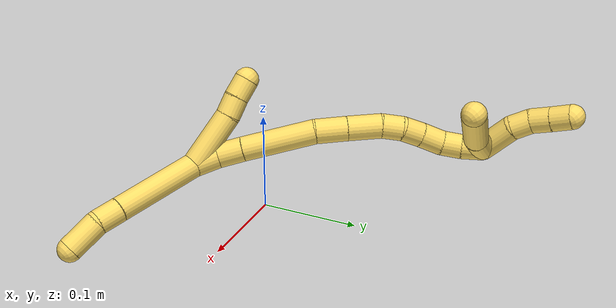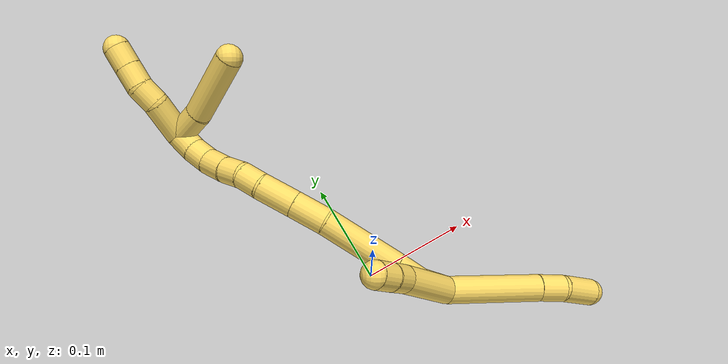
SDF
<sdf version="1.7">
 <world name="default">
  <model name="5">
   <static>0</static>
   <link name="5">
    <collision name="collision-cylinder-e_1_2_8">
     <pose>0.004018 -0.004779 -0.044405 3.03439 0.089728 1.39349</pose>
     <geometry><cylinder><radius>0.0125</radius><length>0.089684</length></cylinder></geometry>
     <surface>
      <friction><ode><mu>1.16</mu><mu2>1.16</mu2><slip1>0</slip1><slip2>0</slip2></ode></friction>
      <contact><ode><kp>1e+06</kp><kd>1</kd><max_vel>0</max_vel><min_depth>0.001</min_depth></ode></contact>
     </surface>
    </collision>
    <visual name="visual-cylinder-e_1_2_8">
     <pose>0.004018 -0.004779 -0.044405 3.03439 0.089728 1.39349</pose>
     <geometry><cylinder><radius>0.0125</radius><length>0.089684</length></cylinder></geometry>
     <material><ambient>1 0.858824 0.4 1</ambient></material>
    </visual>
    <collision name="collision-cylinder-e_2_8_9">
     <pose>0.008749 -0.011257 -0.101017 3.00326 0.057745 0.789988</pose>
     <geometry><cylinder><radius>0.0125</radius><length>0.024689</length></cylinder></geometry>
     <surface>
      <friction><ode><mu>1.16</mu><mu2>1.16</mu2><slip1>0</slip1><slip2>0</slip2></ode></friction>
      <contact><ode><kp>1e+06</kp><kd>1</kd><max_vel>0</max_vel><min_depth>0.001</min_depth></ode></contact>
     </surface>
    </collision>
    <visual name="visual-cylinder-e_2_8_9">
     <pose>0.008749 -0.011257 -0.101017 3.00326 0.057745 0.789988</pose>
     <geometry><cylinder><radius>0.0125</radius><length>0.024689</length></cylinder></geometry>
     <material><ambient>1 0.858824 0.4 1</ambient></material>
    </visual>
    <collision name="collision-cylinder-e_3_9_6">
     <pose>0.005013 -0.014565 -0.130397 3.0482 -0.252367 -2.43574</pose>
     <geometry><cylinder><radius>0.0125</radius><length>0.035627</length></cylinder></geometry>
     <surface>
      <friction><ode><mu>1.16</mu><mu2>1.16</mu2><slip1>0</slip1><slip2>0</slip2></ode></friction>
      <contact><ode><kp>1e+06</kp><kd>1</kd><max_vel>0</max_vel><min_depth>0.001</min_depth></ode></contact>
     </surface>
    </collision>
    <visual name="visual-cylinder-e_3_9_6">
     <pose>0.005013 -0.014565 -0.130397 3.0482 -0.252367 -2.43574</pose>
     <geometry><cylinder><radius>0.0125</radius><length>0.035627</length></cylinder></geometry>
     <material><ambient>1 0.858824 0.4 1</ambient></material>
    </visual>
    <collision name="collision-cylinder-e_1_2_10">
     <pose>0.014366 0.001454 0.02599 -0.055884 0.504296 -0.014401</pose>
     <geometry><cylinder><radius>0.0125</radius><length>0.059464</length></cylinder></geometry>
     <surface>
      <friction><ode><mu>1.16</mu><mu2>1.16</mu2><slip1>0</slip1><slip2>0</slip2></ode></friction>
      <contact><ode><kp>1e+06</kp><kd>1</kd><max_vel>0</max_vel><min_depth>0.001</min_depth></ode></contact>
     </surface>
    </collision>
    <visual name="visual-cylinder-e_1_2_10">
     <pose>0.014366 0.001454 0.02599 -0.055884 0.504296 -0.014401</pose>
     <geometry><cylinder><radius>0.0125</radius><length>0.059464</length></cylinder></geometry>
     <material><ambient>1 0.858824 0.4 1</ambient></material>
    </visual>
    <collision name="collision-cylinder-e_2_10_11">
     <pose>0.034444 0.001903 0.060215 0.121503 0.603009 0.037828</pose>
     <geometry><cylinder><radius>0.0125</radius><length>0.020143</length></cylinder></geometry>
     <surface>
      <friction><ode><mu>1.16</mu><mu2>1.16</mu2><slip1>0</slip1><slip2>0</slip2></ode></friction>
      <contact><ode><kp>1e+06</kp><kd>1</kd><max_vel>0</max_vel><min_depth>0.001</min_depth></ode></contact>
     </surface>
    </collision>
    <visual name="visual-cylinder-e_2_10_11">
     <pose>0.034444 0.001903 0.060215 0.121503 0.603009 0.037828</pose>
     <geometry><cylinder><radius>0.0125</radius><length>0.020143</length></cylinder></geometry>
     <material><ambient>1 0.858824 0.4 1</ambient></material>
    </visual>
    <collision name="collision-cylinder-e_3_11_5">
     <pose>0.045242 0.000489 0.077277 0.046247 0.522214 0.01236</pose>
     <geometry><cylinder><radius>0.0125</radius><length>0.020393</length></cylinder></geometry>
     <surface>
      <friction><ode><mu>1.16</mu><mu2>1.16</mu2><slip1>0</slip1><slip2>0</slip2></ode></friction>
      <contact><ode><kp>1e+06</kp><kd>1</kd><max_vel>0</max_vel><min_depth>0.001</min_depth></ode></contact>
     </surface>
    </collision>
    <visual name="visual-cylinder-e_3_11_5">
     <pose>0.045242 0.000489 0.077277 0.046247 0.522214 0.01236</pose>
     <geometry><cylinder><radius>0.0125</radius><length>0.020393</length></cylinder></geometry>
     <material><ambient>1 0.858824 0.4 1</ambient></material>
    </visual>
    <collision name="collision-cylinder-e_1_2_12">
     <pose>-0.000112 0.005137 0.011595 -0.417039 -0.008865 0.001876</pose>
     <geometry><cylinder><radius>0.0125</radius><length>0.025364</length></cylinder></geometry>
     <surface>
      <friction><ode><mu>1.16</mu><mu2>1.16</mu2><slip1>0</slip1><slip2>0</slip2></ode></friction>
      <contact><ode><kp>1e+06</kp><kd>1</kd><max_vel>0</max_vel><min_depth>0.001</min_depth></ode></contact>
     </surface>
    </collision>
    <visual name="visual-cylinder-e_1_2_12">
     <pose>-0.000112 0.005137 0.011595 -0.417039 -0.008865 0.001876</pose>
     <geometry><cylinder><radius>0.0125</radius><length>0.025364</length></cylinder></geometry>
     <material><ambient>1 0.858824 0.4 1</ambient></material>
    </visual>
    <collision name="collision-cylinder-e_2_12_13">
     <pose>0.00111 0.018461 0.0335 -0.67109 0.101002 -0.035249</pose>
     <geometry><cylinder><radius>0.0125</radius><length>0.026467</length></cylinder></geometry>
     <surface>
      <friction><ode><mu>1.16</mu><mu2>1.16</mu2><slip1>0</slip1><slip2>0</slip2></ode></friction>
      <contact><ode><kp>1e+06</kp><kd>1</kd><max_vel>0</max_vel><min_depth>0.001</min_depth></ode></contact>
     </surface>
    </collision>
    <visual name="visual-cylinder-e_2_12_13">
     <pose>0.00111 0.018461 0.0335 -0.67109 0.101002 -0.035249</pose>
     <geometry><cylinder><radius>0.0125</radius><length>0.026467</length></cylinder></geometry>
     <material><ambient>1 0.858824 0.4 1</ambient></material>
    </visual>
    <collision name="collision-cylinder-e_3_13_14">
     <pose>0.004817 0.049507 0.072923 -0.665675 0.064022 -0.022139</pose>
     <geometry><cylinder><radius>0.0125</radius><length>0.074179</length></cylinder></geometry>
     <surface>
      <friction><ode><mu>1.16</mu><mu2>1.16</mu2><slip1>0</slip1><slip2>0</slip2></ode></friction>
      <contact><ode><kp>1e+06</kp><kd>1</kd><max_vel>0</max_vel><min_depth>0.001</min_depth></ode></contact>
     </surface>
    </collision>
    <visual name="visual-cylinder-e_3_13_14">
     <pose>0.004817 0.049507 0.072923 -0.665675 0.064022 -0.022139</pose>
     <geometry><cylinder><radius>0.0125</radius><length>0.074179</length></cylinder></geometry>
     <material><ambient>1 0.858824 0.4 1</ambient></material>
    </visual>
    <collision name="collision-cylinder-e_4_14_15">
     <pose>0.005531 0.082684 0.114176 -0.704343 -0.103735 0.038151</pose>
     <geometry><cylinder><radius>0.0125</radius><length>0.032039</length></cylinder></geometry>
     <surface>
      <friction><ode><mu>1.16</mu><mu2>1.16</mu2><slip1>0</slip1><slip2>0</slip2></ode></friction>
      <contact><ode><kp>1e+06</kp><kd>1</kd><max_vel>0</max_vel><min_depth>0.001</min_depth></ode></contact>
     </surface>
    </collision>
    <visual name="visual-cylinder-e_4_14_15">
     <pose>0.005531 0.082684 0.114176 -0.704343 -0.103735 0.038151</pose>
     <geometry><cylinder><radius>0.0125</radius><length>0.032039</length></cylinder></geometry>
     <material><ambient>1 0.858824 0.4 1</ambient></material>
    </visual>
    <collision name="collision-cylinder-e_5_15_16">
     <pose>0.001751 0.104216 0.139415 -0.708096 -0.122381 0.045283</pose>
     <geometry><cylinder><radius>0.0125</radius><length>0.034746</length></cylinder></geometry>
     <surface>
      <friction><ode><mu>1.16</mu><mu2>1.16</mu2><slip1>0</slip1><slip2>0</slip2></ode></friction>
      <contact><ode><kp>1e+06</kp><kd>1</kd><max_vel>0</max_vel><min_depth>0.001</min_depth></ode></contact>
     </surface>
    </collision>
    <visual name="visual-cylinder-e_5_15_16">
     <pose>0.001751 0.104216 0.139415 -0.708096 -0.122381 0.045283</pose>
     <geometry><cylinder><radius>0.0125</radius><length>0.034746</length></cylinder></geometry>
     <material><ambient>1 0.858824 0.4 1</ambient></material>
    </visual>
    <collision name="collision-cylinder-e_6_16_17">
     <pose>-0.003272 0.123137 0.159272 -0.850811 -0.275923 0.125647</pose>
     <geometry><cylinder><radius>0.0125</radius><length>0.021305</length></cylinder></geometry>
     <surface>
      <friction><ode><mu>1.16</mu><mu2>1.16</mu2><slip1>0</slip1><slip2>0</slip2></ode></friction>
      <contact><ode><kp>1e+06</kp><kd>1</kd><max_vel>0</max_vel><min_depth>0.001</min_depth></ode></contact>
     </surface>
    </collision>
    <visual name="visual-cylinder-e_6_16_17">
     <pose>-0.003272 0.123137 0.159272 -0.850811 -0.275923 0.125647</pose>
     <geometry><cylinder><radius>0.0125</radius><length>0.021305</length></cylinder></geometry>
     <material><ambient>1 0.858824 0.4 1</ambient></material>
    </visual>
    <collision name="collision-cylinder-e_7_17_18">
     <pose>-0.011574 0.137306 0.171961 -0.828331 -0.551792 0.247638</pose>
     <geometry><cylinder><radius>0.0125</radius><length>0.020602</length></cylinder></geometry>
     <surface>
      <friction><ode><mu>1.16</mu><mu2>1.16</mu2><slip1>0</slip1><slip2>0</slip2></ode></friction>
      <contact><ode><kp>1e+06</kp><kd>1</kd><max_vel>0</max_vel><min_depth>0.001</min_depth></ode></contact>
     </surface>
    </collision>
    <visual name="visual-cylinder-e_7_17_18">
     <pose>-0.011574 0.137306 0.171961 -0.828331 -0.551792 0.247638</pose>
     <geometry><cylinder><radius>0.0125</radius><length>0.020602</length></cylinder></geometry>
     <material><ambient>1 0.858824 0.4 1</ambient></material>
    </visual>
    <collision name="collision-cylinder-e_8_18_19">
     <pose>-0.022768 0.152168 0.183804 -0.957409 -0.513648 0.270916</pose>
     <geometry><cylinder><radius>0.0125</radius><length>0.023586</length></cylinder></geometry>
     <surface>
      <friction><ode><mu>1.16</mu><mu2>1.16</mu2><slip1>0</slip1><slip2>0</slip2></ode></friction>
      <contact><ode><kp>1e+06</kp><kd>1</kd><max_vel>0</max_vel><min_depth>0.001</min_depth></ode></contact>
     </surface>
    </collision>
    <visual name="visual-cylinder-e_8_18_19">
     <pose>-0.022768 0.152168 0.183804 -0.957409 -0.513648 0.270916</pose>
     <geometry><cylinder><radius>0.0125</radius><length>0.023586</length></cylinder></geometry>
     <material><ambient>1 0.858824 0.4 1</ambient></material>
    </visual>
    <collision name="collision-cylinder-e_9_19_20">
     <pose>-0.031017 0.168659 0.195416 -0.95721 -0.24305 0.126559</pose>
     <geometry><cylinder><radius>0.0125</radius><length>0.020393</length></cylinder></geometry>
     <surface>
      <friction><ode><mu>1.16</mu><mu2>1.16</mu2><slip1>0</slip1><slip2>0</slip2></ode></friction>
      <contact><ode><kp>1e+06</kp><kd>1</kd><max_vel>0</max_vel><min_depth>0.001</min_depth></ode></contact>
     </surface>
    </collision>
    <visual name="visual-cylinder-e_9_19_20">
     <pose>-0.031017 0.168659 0.195416 -0.95721 -0.24305 0.126559</pose>
     <geometry><cylinder><radius>0.0125</radius><length>0.020393</length></cylinder></geometry>
     <material><ambient>1 0.858824 0.4 1</ambient></material>
    </visual>
    <collision name="collision-cylinder-e_10_20_1">
     <pose>-0.03381 0.185617 0.20702 -0.983229 -0.031826 0.017043</pose>
     <geometry><cylinder><radius>0.0125</radius><length>0.021318</length></cylinder></geometry>
     <surface>
      <friction><ode><mu>1.16</mu><mu2>1.16</mu2><slip1>0</slip1><slip2>0</slip2></ode></friction>
      <contact><ode><kp>1e+06</kp><kd>1</kd><max_vel>0</max_vel><min_depth>0.001</min_depth></ode></contact>
     </surface>
    </collision>
    <visual name="visual-cylinder-e_10_20_1">
     <pose>-0.03381 0.185617 0.20702 -0.983229 -0.031826 0.017043</pose>
     <geometry><cylinder><radius>0.0125</radius><length>0.021318</length></cylinder></geometry>
     <material><ambient>1 0.858824 0.4 1</ambient></material>
    </visual>
    <collision name="collision-cylinder-e_1_1_21">
     <pose>-0.022472 0.204614 0.223905 -0.745215 0.663459 -0.267665</pose>
     <geometry><cylinder><radius>0.0125</radius><length>0.037922</length></cylinder></geometry>
     <surface>
      <friction><ode><mu>1.16</mu><mu2>1.16</mu2><slip1>0</slip1><slip2>0</slip2></ode></friction>
      <contact><ode><kp>1e+06</kp><kd>1</kd><max_vel>0</max_vel><min_depth>0.001</min_depth></ode></contact>
     </surface>
    </collision>
    <visual name="visual-cylinder-e_1_1_21">
     <pose>-0.022472 0.204614 0.223905 -0.745215 0.663459 -0.267665</pose>
     <geometry><cylinder><radius>0.0125</radius><length>0.037922</length></cylinder></geometry>
     <material><ambient>1 0.858824 0.4 1</ambient></material>
    </visual>
    <collision name="collision-cylinder-e_2_21_22">
     <pose>-0.007479 0.221541 0.241668 -0.786299 0.332486 -0.138956</pose>
     <geometry><cylinder><radius>0.0125</radius><length>0.020318</length></cylinder></geometry>
     <surface>
      <friction><ode><mu>1.16</mu><mu2>1.16</mu2><slip1>0</slip1><slip2>0</slip2></ode></friction>
      <contact><ode><kp>1e+06</kp><kd>1</kd><max_vel>0</max_vel><min_depth>0.001</min_depth></ode></contact>
     </surface>
    </collision>
    <visual name="visual-cylinder-e_2_21_22">
     <pose>-0.007479 0.221541 0.241668 -0.786299 0.332486 -0.138956</pose>
     <geometry><cylinder><radius>0.0125</radius><length>0.020318</length></cylinder></geometry>
     <material><ambient>1 0.858824 0.4 1</ambient></material>
    </visual>
    <collision name="collision-cylinder-e_3_22_23">
     <pose>-0.001288 0.237341 0.253203 -1.08527 0.275275 -0.166665</pose>
     <geometry><cylinder><radius>0.0125</radius><length>0.021158</length></cylinder></geometry>
     <surface>
      <friction><ode><mu>1.16</mu><mu2>1.16</mu2><slip1>0</slip1><slip2>0</slip2></ode></friction>
      <contact><ode><kp>1e+06</kp><kd>1</kd><max_vel>0</max_vel><min_depth>0.001</min_depth></ode></contact>
     </surface>
    </collision>
    <visual name="visual-cylinder-e_3_22_23">
     <pose>-0.001288 0.237341 0.253203 -1.08527 0.275275 -0.166665</pose>
     <geometry><cylinder><radius>0.0125</radius><length>0.021158</length></cylinder></geometry>
     <material><ambient>1 0.858824 0.4 1</ambient></material>
    </visual>
    <collision name="collision-cylinder-e_4_23_4">
     <pose>0.004606 0.255038 0.262584 -1.08139 0.297321 -0.179348</pose>
     <geometry><cylinder><radius>0.0125</radius><length>0.020601</length></cylinder></geometry>
     <surface>
      <friction><ode><mu>1.16</mu><mu2>1.16</mu2><slip1>0</slip1><slip2>0</slip2></ode></friction>
      <contact><ode><kp>1e+06</kp><kd>1</kd><max_vel>0</max_vel><min_depth>0.001</min_depth></ode></contact>
     </surface>
    </collision>
    <visual name="visual-cylinder-e_4_23_4">
     <pose>0.004606 0.255038 0.262584 -1.08139 0.297321 -0.179348</pose>
     <geometry><cylinder><radius>0.0125</radius><length>0.020601</length></cylinder></geometry>
     <material><ambient>1 0.858824 0.4 1</ambient></material>
    </visual>
    <collision name="collision-cylinder-e_1_1_24">
     <pose>-0.019721 0.196735 0.205467 -2.8484 1.07567 -2.65627</pose>
     <geometry><cylinder><radius>0.0125</radius><length>0.032794</length></cylinder></geometry>
     <surface>
      <friction><ode><mu>1.16</mu><mu2>1.16</mu2><slip1>0</slip1><slip2>0</slip2></ode></friction>
      <contact><ode><kp>1e+06</kp><kd>1</kd><max_vel>0</max_vel><min_depth>0.001</min_depth></ode></contact>
     </surface>
    </collision>
    <visual name="visual-cylinder-e_1_1_24">
     <pose>-0.019721 0.196735 0.205467 -2.8484 1.07567 -2.65627</pose>
     <geometry><cylinder><radius>0.0125</radius><length>0.032794</length></cylinder></geometry>
     <material><ambient>1 0.858824 0.4 1</ambient></material>
    </visual>
    <collision name="collision-cylinder-e_2_24_3">
     <pose>0.025483 0.207232 0.187333 -2.48398 1.15774 -2.17932</pose>
     <geometry><cylinder><radius>0.0125</radius><length>0.067206</length></cylinder></geometry>
     <surface>
      <friction><ode><mu>1.16</mu><mu2>1.16</mu2><slip1>0</slip1><slip2>0</slip2></ode></friction>
      <contact><ode><kp>1e+06</kp><kd>1</kd><max_vel>0</max_vel><min_depth>0.001</min_depth></ode></contact>
     </surface>
    </collision>
    <visual name="visual-cylinder-e_2_24_3">
     <pose>0.025483 0.207232 0.187333 -2.48398 1.15774 -2.17932</pose>
     <geometry><cylinder><radius>0.0125</radius><length>0.067206</length></cylinder></geometry>
     <material><ambient>1 0.858824 0.4 1</ambient></material>
    </visual>
    <collision name="collision-sphere-3">
     <pose>0.05626 0.215476 0.176657 0 -0 0</pose>
     <geometry><sphere><radius>0.0125</radius></sphere></geometry>
     <surface>
      <friction><ode><mu>1.16</mu><mu2>1.16</mu2><slip1>0</slip1><slip2>0</slip2></ode></friction>
      <contact><ode><kp>1e+06</kp><kd>1</kd><max_vel>0</max_vel><min_depth>0.001</min_depth></ode></contact>
     </surface>
    </collision>
    <visual name="visual-sphere-3">
     <pose>0.05626 0.215476 0.176657 0 -0 0</pose>
     <geometry><sphere><radius>0.0125</radius></sphere></geometry>
     <material><ambient>1 0.858824 0.4 1</ambient></material>
    </visual>
    <collision name="collision-sphere-24">
     <pose>-0.005294 0.198987 0.198009 0 -0 0</pose>
     <geometry><sphere><radius>0.0125</radius></sphere></geometry>
     <surface>
      <friction><ode><mu>1.16</mu><mu2>1.16</mu2><slip1>0</slip1><slip2>0</slip2></ode></friction>
      <contact><ode><kp>1e+06</kp><kd>1</kd><max_vel>0</max_vel><min_depth>0.001</min_depth></ode></contact>
     </surface>
    </collision>
    <visual name="visual-sphere-24">
     <pose>-0.005294 0.198987 0.198009 0 -0 0</pose>
     <geometry><sphere><radius>0.0125</radius></sphere></geometry>
     <material><ambient>1 0.858824 0.4 1</ambient></material>
    </visual>
    <collision name="collision-sphere-4">
     <pose>0.007623 0.263731 0.267214 0 -0 0</pose>
     <geometry><sphere><radius>0.0125</radius></sphere></geometry>
     <surface>
      <friction><ode><mu>1.16</mu><mu2>1.16</mu2><slip1>0</slip1><slip2>0</slip2></ode></friction>
      <contact><ode><kp>1e+06</kp><kd>1</kd><max_vel>0</max_vel><min_depth>0.001</min_depth></ode></contact>
     </surface>
    </collision>
    <visual name="visual-sphere-4">
     <pose>0.007623 0.263731 0.267214 0 -0 0</pose>
     <geometry><sphere><radius>0.0125</radius></sphere></geometry>
     <material><ambient>1 0.858824 0.4 1</ambient></material>
    </visual>
    <collision name="collision-sphere-23">
     <pose>0.001588 0.246346 0.257954 0 -0 0</pose>
     <geometry><sphere><radius>0.0125</radius></sphere></geometry>
     <surface>
      <friction><ode><mu>1.16</mu><mu2>1.16</mu2><slip1>0</slip1><slip2>0</slip2></ode></friction>
      <contact><ode><kp>1e+06</kp><kd>1</kd><max_vel>0</max_vel><min_depth>0.001</min_depth></ode></contact>
     </surface>
    </collision>
    <visual name="visual-sphere-23">
     <pose>0.001588 0.246346 0.257954 0 -0 0</pose>
     <geometry><sphere><radius>0.0125</radius></sphere></geometry>
     <material><ambient>1 0.858824 0.4 1</ambient></material>
    </visual>
    <collision name="collision-sphere-22">
     <pose>-0.004163 0.228337 0.248452 0 -0 0</pose>
     <geometry><sphere><radius>0.0125</radius></sphere></geometry>
     <surface>
      <friction><ode><mu>1.16</mu><mu2>1.16</mu2><slip1>0</slip1><slip2>0</slip2></ode></friction>
      <contact><ode><kp>1e+06</kp><kd>1</kd><max_vel>0</max_vel><min_depth>0.001</min_depth></ode></contact>
     </surface>
    </collision>
    <visual name="visual-sphere-22">
     <pose>-0.004163 0.228337 0.248452 0 -0 0</pose>
     <geometry><sphere><radius>0.0125</radius></sphere></geometry>
     <material><ambient>1 0.858824 0.4 1</ambient></material>
    </visual>
    <collision name="collision-sphere-21">
     <pose>-0.010795 0.214745 0.234884 0 -0 0</pose>
     <geometry><sphere><radius>0.0125</radius></sphere></geometry>
     <surface>
      <friction><ode><mu>1.16</mu><mu2>1.16</mu2><slip1>0</slip1><slip2>0</slip2></ode></friction>
      <contact><ode><kp>1e+06</kp><kd>1</kd><max_vel>0</max_vel><min_depth>0.001</min_depth></ode></contact>
     </surface>
    </collision>
    <visual name="visual-sphere-21">
     <pose>-0.010795 0.214745 0.234884 0 -0 0</pose>
     <geometry><sphere><radius>0.0125</radius></sphere></geometry>
     <material><ambient>1 0.858824 0.4 1</ambient></material>
    </visual>
    <collision name="collision-sphere-1">
     <pose>-0.034149 0.194484 0.212926 0 -0 0</pose>
     <geometry><sphere><radius>0.0125</radius></sphere></geometry>
     <surface>
      <friction><ode><mu>1.16</mu><mu2>1.16</mu2><slip1>0</slip1><slip2>0</slip2></ode></friction>
      <contact><ode><kp>1e+06</kp><kd>1</kd><max_vel>0</max_vel><min_depth>0.001</min_depth></ode></contact>
     </surface>
    </collision>
    <visual name="visual-sphere-1">
     <pose>-0.034149 0.194484 0.212926 0 -0 0</pose>
     <geometry><sphere><radius>0.0125</radius></sphere></geometry>
     <material><ambient>1 0.858824 0.4 1</ambient></material>
    </visual>
    <collision name="collision-sphere-11">
     <pose>0.040156 0.000897 0.068448 0 -0 0</pose>
     <geometry><sphere><radius>0.0125</radius></sphere></geometry>
     <surface>
      <friction><ode><mu>1.16</mu><mu2>1.16</mu2><slip1>0</slip1><slip2>0</slip2></ode></friction>
      <contact><ode><kp>1e+06</kp><kd>1</kd><max_vel>0</max_vel><min_depth>0.001</min_depth></ode></contact>
     </surface>
    </collision>
    <visual name="visual-sphere-11">
     <pose>0.040156 0.000897 0.068448 0 -0 0</pose>
     <geometry><sphere><radius>0.0125</radius></sphere></geometry>
     <material><ambient>1 0.858824 0.4 1</ambient></material>
    </visual>
    <collision name="collision-sphere-10">
     <pose>0.028733 0.002908 0.051981 0 -0 0</pose>
     <geometry><sphere><radius>0.0125</radius></sphere></geometry>
     <surface>
      <friction><ode><mu>1.16</mu><mu2>1.16</mu2><slip1>0</slip1><slip2>0</slip2></ode></friction>
      <contact><ode><kp>1e+06</kp><kd>1</kd><max_vel>0</max_vel><min_depth>0.001</min_depth></ode></contact>
     </surface>
    </collision>
    <visual name="visual-sphere-10">
     <pose>0.028733 0.002908 0.051981 0 -0 0</pose>
     <geometry><sphere><radius>0.0125</radius></sphere></geometry>
     <material><ambient>1 0.858824 0.4 1</ambient></material>
    </visual>
    <collision name="collision-sphere-6">
     <pose>0.000565 -0.016173 -0.147571 0 -0 0</pose>
     <geometry><sphere><radius>0.0125</radius></sphere></geometry>
     <surface>
      <friction><ode><mu>1.16</mu><mu2>1.16</mu2><slip1>0</slip1><slip2>0</slip2></ode></friction>
      <contact><ode><kp>1e+06</kp><kd>1</kd><max_vel>0</max_vel><min_depth>0.001</min_depth></ode></contact>
     </surface>
    </collision>
    <visual name="visual-sphere-6">
     <pose>0.000565 -0.016173 -0.147571 0 -0 0</pose>
     <geometry><sphere><radius>0.0125</radius></sphere></geometry>
     <material><ambient>1 0.858824 0.4 1</ambient></material>
    </visual>
    <collision name="collision-sphere-9">
     <pose>0.009461 -0.012956 -0.113223 0 -0 0</pose>
     <geometry><sphere><radius>0.0125</radius></sphere></geometry>
     <surface>
      <friction><ode><mu>1.16</mu><mu2>1.16</mu2><slip1>0</slip1><slip2>0</slip2></ode></friction>
      <contact><ode><kp>1e+06</kp><kd>1</kd><max_vel>0</max_vel><min_depth>0.001</min_depth></ode></contact>
     </surface>
    </collision>
    <visual name="visual-sphere-9">
     <pose>0.009461 -0.012956 -0.113223 0 -0 0</pose>
     <geometry><sphere><radius>0.0125</radius></sphere></geometry>
     <material><ambient>1 0.858824 0.4 1</ambient></material>
    </visual>
    <collision name="collision-sphere-2">
     <geometry><sphere><radius>0.0125</radius></sphere></geometry>
     <surface>
      <friction><ode><mu>1.16</mu><mu2>1.16</mu2><slip1>0</slip1><slip2>0</slip2></ode></friction>
      <contact><ode><kp>1e+06</kp><kd>1</kd><max_vel>0</max_vel><min_depth>0.001</min_depth></ode></contact>
     </surface>
    </collision>
    <visual name="visual-sphere-2">
     <geometry><sphere><radius>0.0125</radius></sphere></geometry>
     <material><ambient>1 0.858824 0.4 1</ambient></material>
    </visual>
    <collision name="collision-sphere-19">
     <pose>-0.028563 0.160567 0.189717 0 -0 0</pose>
     <geometry><sphere><radius>0.0125</radius></sphere></geometry>
     <surface>
      <friction><ode><mu>1.16</mu><mu2>1.16</mu2><slip1>0</slip1><slip2>0</slip2></ode></friction>
      <contact><ode><kp>1e+06</kp><kd>1</kd><max_vel>0</max_vel><min_depth>0.001</min_depth></ode></contact>
     </surface>
    </collision>
    <visual name="visual-sphere-19">
     <pose>-0.028563 0.160567 0.189717 0 -0 0</pose>
     <geometry><sphere><radius>0.0125</radius></sphere></geometry>
     <material><ambient>1 0.858824 0.4 1</ambient></material>
    </visual>
    <collision name="collision-sphere-8">
     <pose>0.008036 -0.009557 -0.088811 0 -0 0</pose>
     <geometry><sphere><radius>0.0125</radius></sphere></geometry>
     <surface>
      <friction><ode><mu>1.16</mu><mu2>1.16</mu2><slip1>0</slip1><slip2>0</slip2></ode></friction>
      <contact><ode><kp>1e+06</kp><kd>1</kd><max_vel>0</max_vel><min_depth>0.001</min_depth></ode></contact>
     </surface>
    </collision>
    <visual name="visual-sphere-8">
     <pose>0.008036 -0.009557 -0.088811 0 -0 0</pose>
     <geometry><sphere><radius>0.0125</radius></sphere></geometry>
     <material><ambient>1 0.858824 0.4 1</ambient></material>
    </visual>
    <collision name="collision-sphere-5">
     <pose>0.050328 8e-05 0.086105 0 -0 0</pose>
     <geometry><sphere><radius>0.0125</radius></sphere></geometry>
     <surface>
      <friction><ode><mu>1.16</mu><mu2>1.16</mu2><slip1>0</slip1><slip2>0</slip2></ode></friction>
      <contact><ode><kp>1e+06</kp><kd>1</kd><max_vel>0</max_vel><min_depth>0.001</min_depth></ode></contact>
     </surface>
    </collision>
    <visual name="visual-sphere-5">
     <pose>0.050328 8e-05 0.086105 0 -0 0</pose>
     <geometry><sphere><radius>0.0125</radius></sphere></geometry>
     <material><ambient>1 0.858824 0.4 1</ambient></material>
    </visual>
    <collision name="collision-sphere-12">
     <pose>-0.000225 0.010273 0.023189 0 -0 0</pose>
     <geometry><sphere><radius>0.0125</radius></sphere></geometry>
     <surface>
      <friction><ode><mu>1.16</mu><mu2>1.16</mu2><slip1>0</slip1><slip2>0</slip2></ode></friction>
      <contact><ode><kp>1e+06</kp><kd>1</kd><max_vel>0</max_vel><min_depth>0.001</min_depth></ode></contact>
     </surface>
    </collision>
    <visual name="visual-sphere-12">
     <pose>-0.000225 0.010273 0.023189 0 -0 0</pose>
     <geometry><sphere><radius>0.0125</radius></sphere></geometry>
     <material><ambient>1 0.858824 0.4 1</ambient></material>
    </visual>
    <collision name="collision-sphere-13">
     <pose>0.002444 0.026648 0.043811 0 -0 0</pose>
     <geometry><sphere><radius>0.0125</radius></sphere></geometry>
     <surface>
      <friction><ode><mu>1.16</mu><mu2>1.16</mu2><slip1>0</slip1><slip2>0</slip2></ode></friction>
      <contact><ode><kp>1e+06</kp><kd>1</kd><max_vel>0</max_vel><min_depth>0.001</min_depth></ode></contact>
     </surface>
    </collision>
    <visual name="visual-sphere-13">
     <pose>0.002444 0.026648 0.043811 0 -0 0</pose>
     <geometry><sphere><radius>0.0125</radius></sphere></geometry>
     <material><ambient>1 0.858824 0.4 1</ambient></material>
    </visual>
    <collision name="collision-sphere-14">
     <pose>0.00719 0.072367 0.102034 0 -0 0</pose>
     <geometry><sphere><radius>0.0125</radius></sphere></geometry>
     <surface>
      <friction><ode><mu>1.16</mu><mu2>1.16</mu2><slip1>0</slip1><slip2>0</slip2></ode></friction>
      <contact><ode><kp>1e+06</kp><kd>1</kd><max_vel>0</max_vel><min_depth>0.001</min_depth></ode></contact>
     </surface>
    </collision>
    <visual name="visual-sphere-14">
     <pose>0.00719 0.072367 0.102034 0 -0 0</pose>
     <geometry><sphere><radius>0.0125</radius></sphere></geometry>
     <material><ambient>1 0.858824 0.4 1</ambient></material>
    </visual>
    <collision name="collision-sphere-15">
     <pose>0.003872 0.093001 0.126317 0 -0 0</pose>
     <geometry><sphere><radius>0.0125</radius></sphere></geometry>
     <surface>
      <friction><ode><mu>1.16</mu><mu2>1.16</mu2><slip1>0</slip1><slip2>0</slip2></ode></friction>
      <contact><ode><kp>1e+06</kp><kd>1</kd><max_vel>0</max_vel><min_depth>0.001</min_depth></ode></contact>
     </surface>
    </collision>
    <visual name="visual-sphere-15">
     <pose>0.003872 0.093001 0.126317 0 -0 0</pose>
     <geometry><sphere><radius>0.0125</radius></sphere></geometry>
     <material><ambient>1 0.858824 0.4 1</ambient></material>
    </visual>
    <collision name="collision-sphere-16">
     <pose>-0.00037 0.115431 0.152513 0 -0 0</pose>
     <geometry><sphere><radius>0.0125</radius></sphere></geometry>
     <surface>
      <friction><ode><mu>1.16</mu><mu2>1.16</mu2><slip1>0</slip1><slip2>0</slip2></ode></friction>
      <contact><ode><kp>1e+06</kp><kd>1</kd><max_vel>0</max_vel><min_depth>0.001</min_depth></ode></contact>
     </surface>
    </collision>
    <visual name="visual-sphere-16">
     <pose>-0.00037 0.115431 0.152513 0 -0 0</pose>
     <geometry><sphere><radius>0.0125</radius></sphere></geometry>
     <material><ambient>1 0.858824 0.4 1</ambient></material>
    </visual>
    <collision name="collision-sphere-17">
     <pose>-0.006174 0.130842 0.16603 0 -0 0</pose>
     <geometry><sphere><radius>0.0125</radius></sphere></geometry>
     <surface>
      <friction><ode><mu>1.16</mu><mu2>1.16</mu2><slip1>0</slip1><slip2>0</slip2></ode></friction>
      <contact><ode><kp>1e+06</kp><kd>1</kd><max_vel>0</max_vel><min_depth>0.001</min_depth></ode></contact>
     </surface>
    </collision>
    <visual name="visual-sphere-17">
     <pose>-0.006174 0.130842 0.16603 0 -0 0</pose>
     <geometry><sphere><radius>0.0125</radius></sphere></geometry>
     <material><ambient>1 0.858824 0.4 1</ambient></material>
    </visual>
    <collision name="collision-sphere-18">
     <pose>-0.016974 0.143769 0.177892 0 -0 0</pose>
     <geometry><sphere><radius>0.0125</radius></sphere></geometry>
     <surface>
      <friction><ode><mu>1.16</mu><mu2>1.16</mu2><slip1>0</slip1><slip2>0</slip2></ode></friction>
      <contact><ode><kp>1e+06</kp><kd>1</kd><max_vel>0</max_vel><min_depth>0.001</min_depth></ode></contact>
     </surface>
    </collision>
    <visual name="visual-sphere-18">
     <pose>-0.016974 0.143769 0.177892 0 -0 0</pose>
     <geometry><sphere><radius>0.0125</radius></sphere></geometry>
     <material><ambient>1 0.858824 0.4 1</ambient></material>
    </visual>
    <collision name="collision-sphere-20">
     <pose>-0.033471 0.17675 0.201114 0 -0 0</pose>
     <geometry><sphere><radius>0.0125</radius></sphere></geometry>
     <surface>
      <friction><ode><mu>1.16</mu><mu2>1.16</mu2><slip1>0</slip1><slip2>0</slip2></ode></friction>
      <contact><ode><kp>1e+06</kp><kd>1</kd><max_vel>0</max_vel><min_depth>0.001</min_depth></ode></contact>
     </surface>
    </collision>
    <visual name="visual-sphere-20">
     <pose>-0.033471 0.17675 0.201114 0 -0 0</pose>
     <geometry><sphere><radius>0.0125</radius></sphere></geometry>
     <material><ambient>1 0.858824 0.4 1</ambient></material>
    </visual>
    <inertial>
     <pose>0.002371 0.091765 0.095294 0 -0 0</pose>
     <mass>0.75</mass>
     <inertia><ixx>0.000148</ixx><ixy>0</ixy><ixz>0</ixz><iyy>0.000167</iyy><iyz>0</iyz><izz>-8e-05</izz></inertia>
    </inertial>
   </link>
   <pose>0.044944 -0.055599 0.056077 -0.431447 -1.20849 0.094187</pose>
  </model>
 </world>
</sdf>
